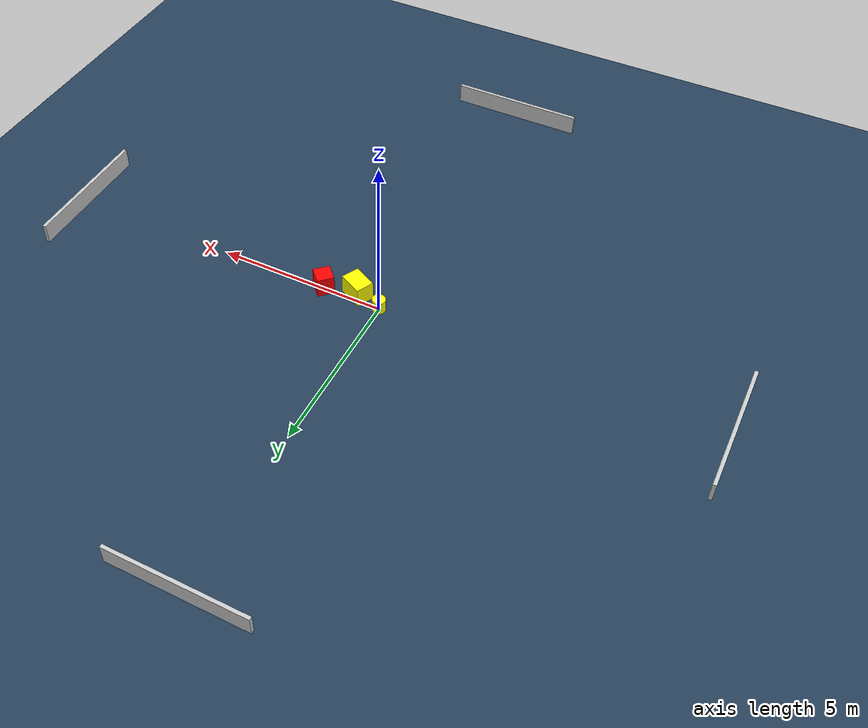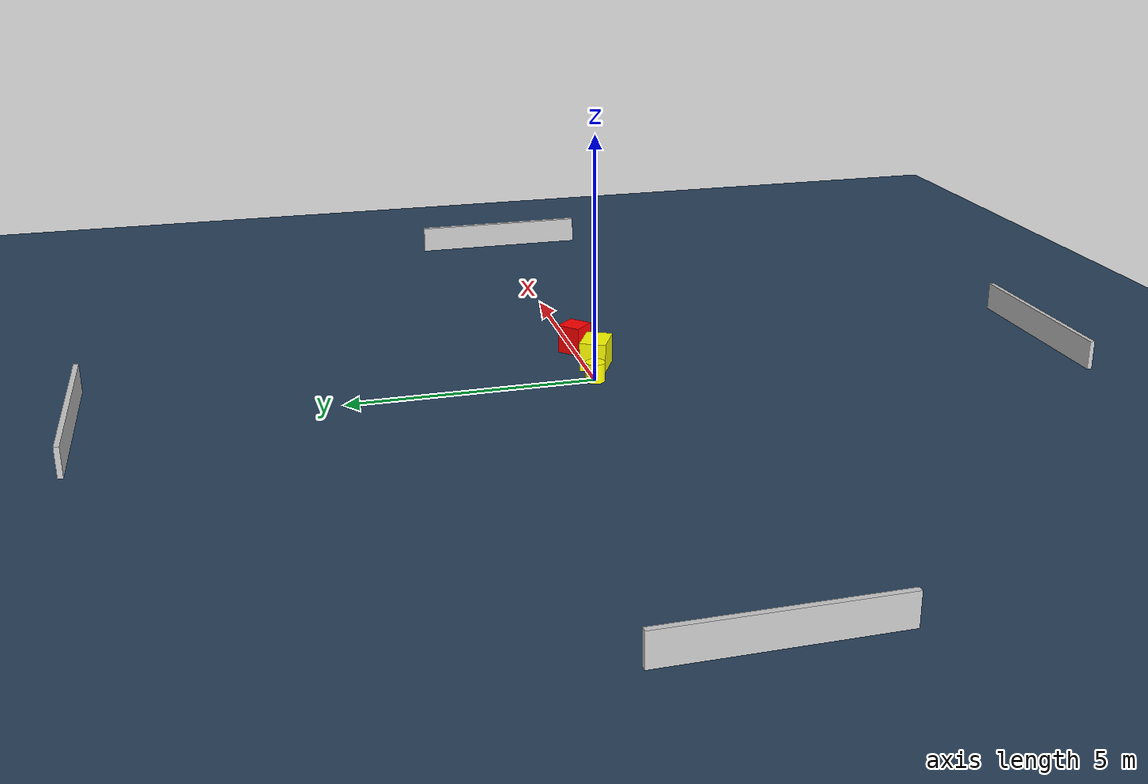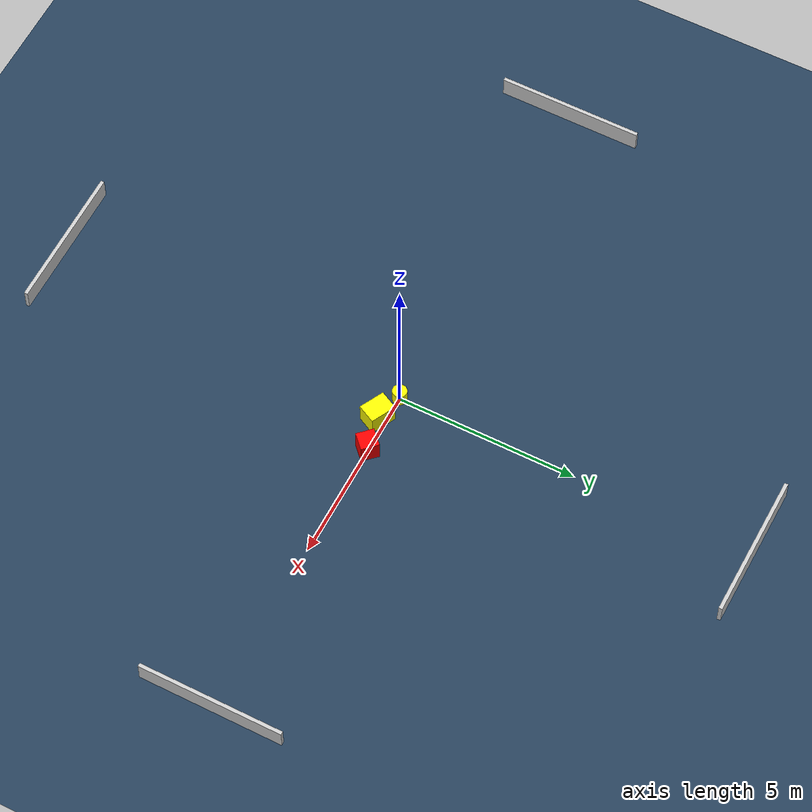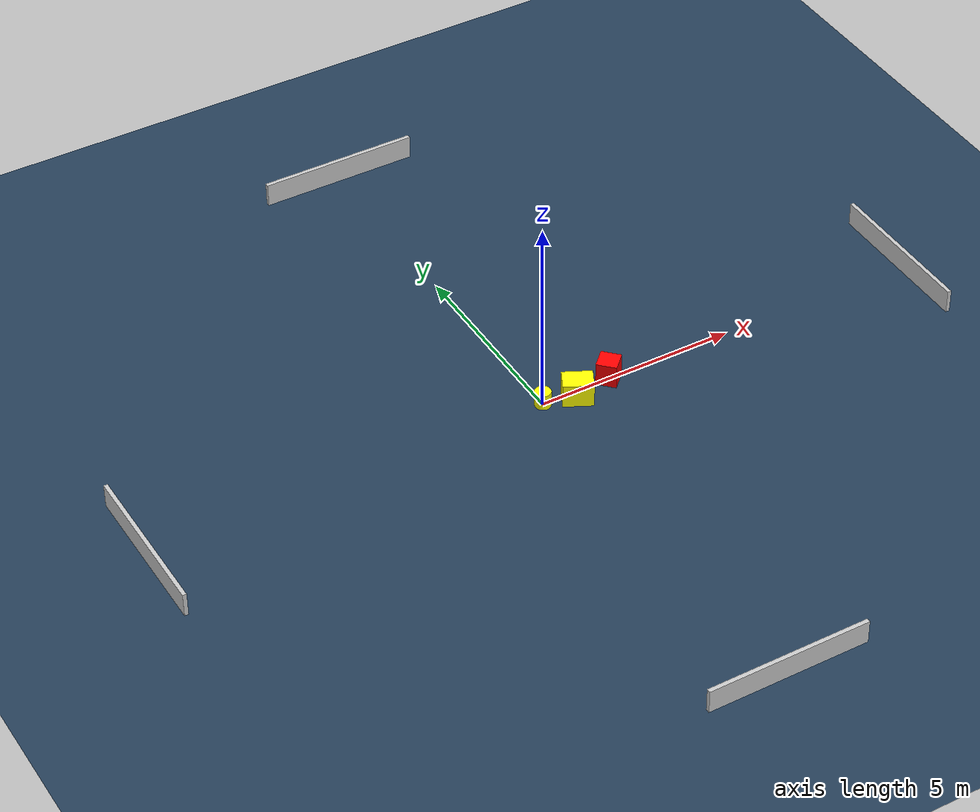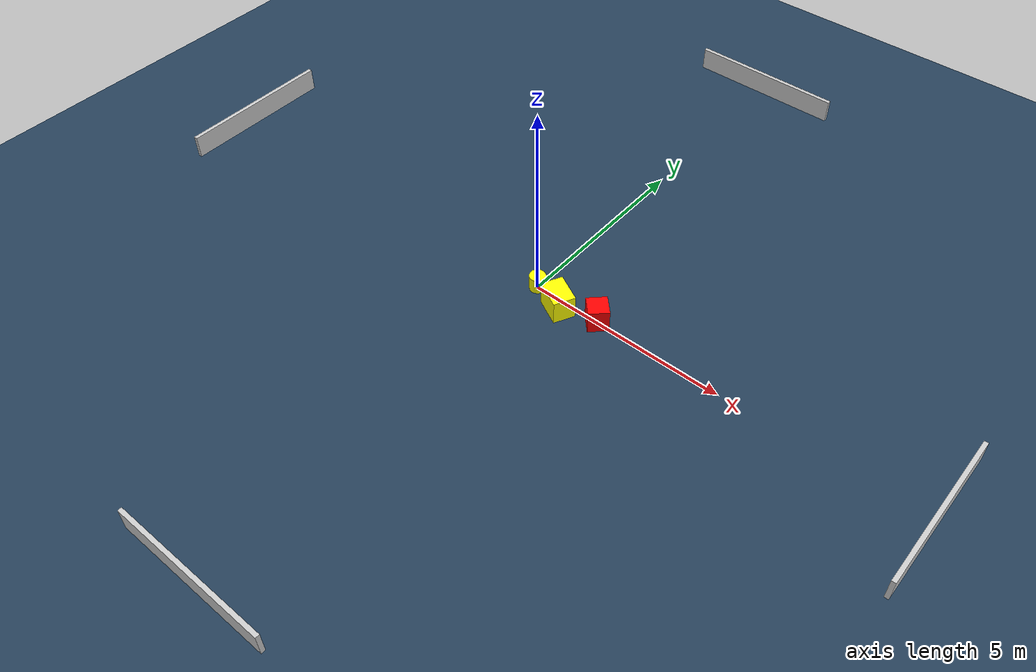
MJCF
<?xml version="1.0" ?>
<mujoco model="generated_environment">
  <option timestep="0.01" integrator="RK4" cone="elliptic"/>
  <default>
    <geom density="1"/>
  </default>
  <asset>
    <texture builtin="gradient" height="3072" name="skybox" rgb1="0.3 0.5 0.7" rgb2="0 0 0" type="skybox" width="512"/>
    <texture builtin="checker" height="300" name="groundplane" rgb1="0.2 0.3 0.4" rgb2="0.1 0.2 0.3" type="2d" width="300"/>
    <material name="groundplane" reflectance="0.2" texrepeat="5 5" texture="groundplane"/>
  </asset>
  <worldbody>
    <light dir="0 0 -1" directional="true" pos="0 0 1.5"/>
    <geom condim="3" friction="0.5 0.005 0.001" material="groundplane" name="floor" pos="0 0 0" size="0 0 0.05" type="plane"/>
    <body name="walls">
      <geom name="wall_1" condim="4" pos="-10.0 0.0 0.3" rgba="0.800000011920929 0.800000011920929 0.800000011920929 1.0" size="0.05 2.0 0.3" type="box"/>
      <geom name="wall_2" condim="4" pos="10.0 0.0 0.3" rgba="0.800000011920929 0.800000011920929 0.800000011920929 1.0" size="0.05 2.0 0.3" type="box"/>
      <geom name="wall_3" condim="4" pos="0.0 -10.0 0.3" rgba="0.800000011920929 0.800000011920929 0.800000011920929 1.0" size="2.0 0.05 0.3" type="box"/>
      <geom name="wall_4" condim="4" pos="0.0 10.0 0.3" rgba="0.800000011920929 0.800000011920929 0.800000011920929 1.0" size="2.0 0.05 0.3" type="box"/>
    </body>
    <body name="robot">
      <joint name="joint_x" type="slide" pos="0 0 0" axis="1 0 0"/>
      <joint name="joint_y" type="slide" pos="0 0 0" axis="0 1 0"/>
      <geom name="robot" type="cylinder" pos="0.0 0.0 0.2" size="0.2 0.2 0.0" mass="5.0" friction="1.0 0.005 0.0001" condim="4" rgba="1.0 1.0 0.0 1.0"/>
    </body>
    <body name="obstacle_1_movable">
      <geom name="obstacle_1_movable" condim="4" pos="0.7932049929924355 -0.2281792169121176 0.3" euler="0 0 333.1633962614467" friction="0.0 0.005 0.001" rgba="1.0 1.0 0.0 1.0" size="0.3661866904894102 0.2719557300127411 0.3" type="box" mass="0.1"/>
      <joint type="free"/>
    </body>
    <body name="obstacle_2_static">
      <geom name="obstacle_2_static" condim="4" pos="1.7592681478577805 -0.010421428781922816 0.3" euler="0 0 44.234328685340685" friction="0.0 0.005 0.001" rgba="1.0 0.0 0.0 1.0" size="0.25009462694251605 0.25122847734713605 0.3" type="box"/>
    </body>
  </worldbody>
  <actuator>
    <motor name="actuator_x" joint="joint_x" gear="1" ctrlrange="-1 1"/>
    <motor name="actuator_y" joint="joint_y" gear="1" ctrlrange="-1 1"/>
  </actuator>
</mujoco>
